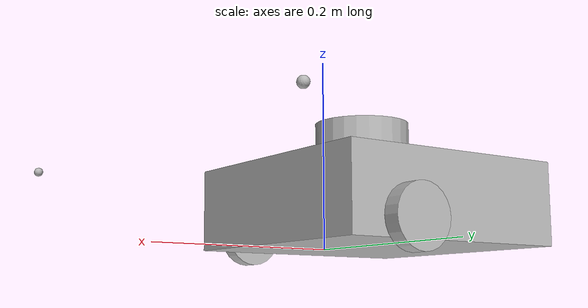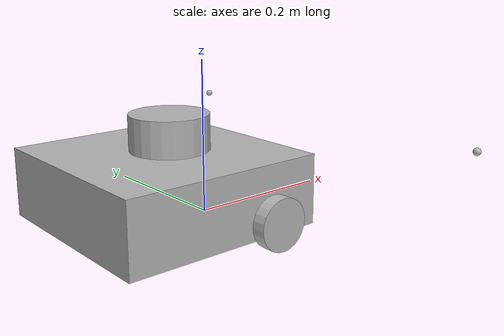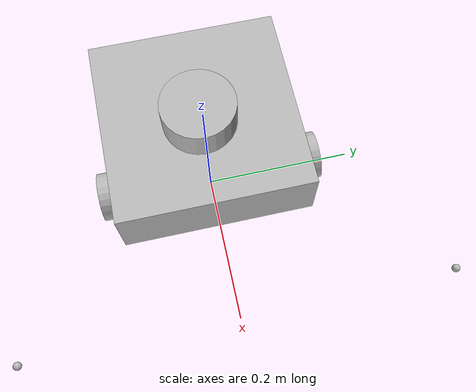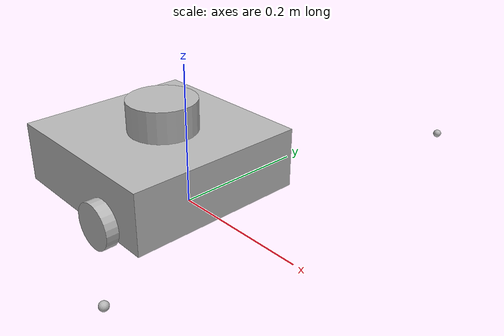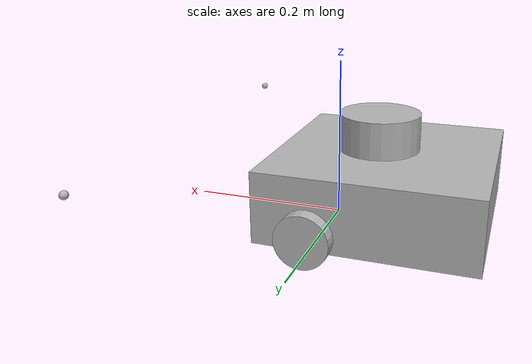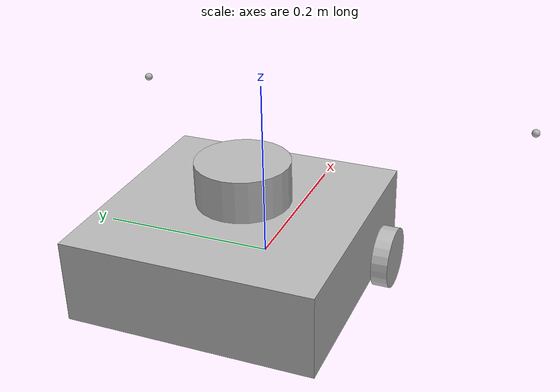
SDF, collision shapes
<?xml version="1.0" ?>
<sdf version="1.5">
  <model name="dogtooth_001">
  <pose>0.0 0.0 0.0 0.0 0.0 0.0</pose>

    <link name="base_footprint"/>

    <link name="base_link">

      <inertial>
        <pose>-0.064 0 0.048 0 0 0</pose>
        <inertia>
          <ixx>8.7002718e-03</ixx>
          <ixy>0</ixy>
          <ixz>0</ixz>
          <iyy>4.2111447e-02</iyy>
          <iyz>0</iyz>
          <izz>7.5254874e-02</izz>
        </inertia>
        <mass>300.0</mass>
      </inertial>

      <collision name="base_collision">
        <pose>-0.064 0 0.048 0 0 0</pose>
        <geometry>
          <box>
            <size>0.265 0.265 0.089</size>
          </box>
        </geometry>
      </collision>

      <visual name="base_visual">
        <pose>-0.064 0 0 0 0 0</pose>
        <geometry>
          <mesh>
            <uri>model://dogtooth_common/meshes/chassis.dae</uri>
            <scale>1 1 1</scale>
          </mesh>
        </geometry>
      </visual>
    </link>

    <link name="imu_link">
      <sensor name="tb3_imu" type="imu">
        <always_on>true</always_on>
        <update_rate>200</update_rate>
        <imu>
          <angular_velocity>
            <x>
              <noise type="gaussian">
                <mean>0.0</mean>
                <stddev>2e-4</stddev>
              </noise>
            </x>
            <y>
              <noise type="gaussian">
                <mean>0.0</mean>
                <stddev>2e-4</stddev>
              </noise>
            </y>
            <z>
              <noise type="gaussian">
                <mean>0.0</mean>
                <stddev>2e-4</stddev>
              </noise>
            </z>
          </angular_velocity>
          <linear_acceleration>
            <x>
              <noise type="gaussian">
                <mean>0.0</mean>
                <stddev>1.7e-2</stddev>
              </noise>
            </x>
            <y>
              <noise type="gaussian">
                <mean>0.0</mean>
                <stddev>1.7e-2</stddev>
              </noise>
            </y>
            <z>
              <noise type="gaussian">
                <mean>0.0</mean>
                <stddev>1.7e-2</stddev>
              </noise>
            </z>
          </linear_acceleration>
        </imu>
        <plugin name="dogtooth_imu" filename="libgazebo_ros_imu_sensor.so">
          <ros>
            <remapping>~/out:=imu</remapping>
          </ros>
        </plugin>
      </sensor>
    </link>

    <link name="base_scan">
      <inertial>
        <pose>1.2 0 0.5 0 0 -1.5</pose>

        <inertia>
          <ixx>0.001</ixx>
          <ixy>0.000</ixy>
          <ixz>0.000</ixz>
          <iyy>0.001</iyy>
          <iyz>0.000</iyz>
          <izz>0.001</izz>
        </inertia>
        <mass>0.0001</mass>
      </inertial>

      <collision name="lidar_sensor_collision">
        <pose>-0.052 0 0.111 0 0 0</pose>
        <geometry>
          <cylinder>
            <radius>0.0508</radius>
            <length>0.055</length>
          </cylinder>
        </geometry>
      </collision>

      <visual name="lidar_sensor_visual">
        <pose>1.2 0 0.5 0 0 -1.5</pose>
        <geometry>
          <mesh>
            <uri>model://dogtooth_common/meshes/lds.dae</uri>
            <scale>0.001 0.001 0.001</scale>
          </mesh>
        </geometry>
      </visual>

      <sensor name="hls_lfcd_lds" type="ray">
        <always_on>true</always_on>
        <visualize>true</visualize>
        <pose>1.2 0 0.5 0 0 -1.5</pose>
        <update_rate>5</update_rate>
        <ray>
            <scan>
              <horizontal>
                  <samples>360</samples>
                  <resolution>1.000000</resolution>
                  <min_angle>0.000000</min_angle>
                  <max_angle>3.140000</max_angle>
              </horizontal>
            </scan>
            <range>
            <min>0.80000</min>
            <max>3.5</max>
            <resolution>0.015000</resolution>
            </range>
            <noise>
            <type>gaussian</type>
            <mean>0.0</mean>
            <stddev>0.01</stddev>
            </noise>
        </ray>
        <plugin name="dogtooth_laserscan" filename="libgazebo_ros_ray_sensor.so">
          <ros>
            <remapping>~/out:=scan</remapping>
          </ros>
          <output_type>sensor_msgs/LaserScan</output_type>
          <frame_name>base_scan</frame_name>
        </plugin>
      </sensor>
    </link>

    <link name="wheel_left_link">

      <inertial>
        <pose>0.0 0.144 0.023 -1.57 0 0</pose>
        <inertia>
          <ixx>1.1175580e-05</ixx>
          <ixy>-4.2369783e-11</ixy>
          <ixz>-5.9381719e-09</ixz>
          <iyy>1.1192413e-05</iyy>
          <iyz>-1.4400107e-11</iyz>
          <izz>2.0712558e-05</izz>
        </inertia>
        <mass>0.1</mass>
      </inertial>

      <collision name="wheel_left_collision">
        <pose>0.0 0.144 0.023 -1.57 0 0</pose>
        <geometry>
          <cylinder>
            <radius>0.033</radius>
            <length>0.018</length>
          </cylinder>
        </geometry>
        <surface>
          <!-- This friction pamareter don't contain reliable data!! -->
          <friction>
            <ode>
              <mu>100000.0</mu>
              <mu2>100000.0</mu2>
              <fdir1>0 0 0</fdir1>
              <slip1>0.0</slip1>
              <slip2>0.0</slip2>
            </ode>
          </friction>
          <contact>
            <ode>
              <soft_cfm>0</soft_cfm>
              <soft_erp>0.2</soft_erp>
              <kp>1e+5</kp>
              <kd>1</kd>
              <max_vel>0.01</max_vel>
              <min_depth>0.001</min_depth>
            </ode>
          </contact>
        </surface>
      </collision>

      <visual name="wheel_left_visual">
        <pose>0.0 0.144 0.023 0 0 0</pose>
        <geometry>
          <mesh>
            <uri>model://dogtooth_common/meshes/wheel.dae</uri>
            <scale>0.001 0.001 0.001</scale>
          </mesh>
        </geometry>
      </visual>
    </link>

    <link name="wheel_right_link">

      <inertial>
        <pose>0.0 -0.144 0.023 -1.57 0 0</pose>
        <inertia>
          <ixx>1.1175580e-05</ixx>
          <ixy>-4.2369783e-11</ixy>
          <ixz>-5.9381719e-09</ixz>
          <iyy>1.1192413e-05</iyy>
          <iyz>-1.4400107e-11</iyz>
          <izz>2.0712558e-05</izz>
        </inertia>
        <mass>0.1</mass>
      </inertial>

      <collision name="wheel_right_collision">
        <pose>0.0 -0.144 0.023 -1.57 0 0</pose>
        <geometry>
          <cylinder>
            <radius>0.033</radius>
            <length>0.018</length>
          </cylinder>
        </geometry>
        <surface>
          <!-- This friction pamareter don't contain reliable data!! -->
          <friction>
            <ode>
              <mu>100000.0</mu>
              <mu2>100000.0</mu2>
              <fdir1>0 0 0</fdir1>
              <slip1>0.0</slip1>
              <slip2>0.0</slip2>
            </ode>
          </friction>
          <contact>
            <ode>
              <soft_cfm>0</soft_cfm>
              <soft_erp>0.2</soft_erp>
              <kp>1e+5</kp>
              <kd>1</kd>
              <max_vel>0.01</max_vel>
              <min_depth>0.001</min_depth>
            </ode>
          </contact>
        </surface>
      </collision>

      <visual name="wheel_right_visual">
        <pose>0.0 -0.144 0.023 0 0 0</pose>
        <geometry>
          <mesh>
            <uri>model://dogtooth_common/meshes/wheel.dae</uri>
            <scale>0.001 0.001 0.001</scale>
          </mesh>
        </geometry>
      </visual>
    </link>

    <link name='caster_back_right_link'>
      <pose>0.215 -0.263 0.096 -1.57 0 0</pose>
      <inertial>
        <mass>0.001</mass>
        <inertia>
          <ixx>0.00001</ixx>
          <ixy>0.000</ixy>
          <ixz>0.000</ixz>
          <iyy>0.00001</iyy>
          <iyz>0.000</iyz>
          <izz>0.00001</izz>
        </inertia>
      </inertial>
      <collision name='collision'>
        <geometry>
          <sphere>
            <radius>0.005000</radius>
          </sphere>
        </geometry>
        <surface>
          <contact>
            <ode>
              <soft_cfm>0</soft_cfm>
              <soft_erp>0.2</soft_erp>
              <kp>1e+5</kp>
              <kd>1</kd>
              <max_vel>0.01</max_vel>
              <min_depth>0.001</min_depth>
            </ode>
          </contact>
        </surface>
      </collision>
    </link>

    <link name='caster_back_left_link'>
      <pose>0.215 0.263 0.096 -1.57 0 0</pose>
      <inertial>
        <mass>0.001</mass>
        <inertia>
          <ixx>0.00001</ixx>
          <ixy>0.000</ixy>
          <ixz>0.000</ixz>
          <iyy>0.00001</iyy>
          <iyz>0.000</iyz>
          <izz>0.00001</izz>
        </inertia>
      </inertial>
      <collision name='collision'>
        <geometry>
          <sphere>
            <radius>0.005000</radius>
          </sphere>
        </geometry>
        <surface>
          <contact>
            <ode>
              <soft_cfm>0</soft_cfm>
              <soft_erp>0.2</soft_erp>
              <kp>1e+5</kp>
              <kd>1</kd>
              <max_vel>0.01</max_vel>
              <min_depth>0.001</min_depth>
            </ode>
          </contact>
        </surface>
      </collision>
    </link>

    <link name="gps_link">
      <sensor name="dogtooth_gps" type="gps">
          <always_on>true</always_on>
          <update_rate>1</update_rate>
          <pose>0 0 0 0 0 0</pose>
          <gps>
            <position_sensing>
              <horizontal>
                <noise type="gaussian">
                  <mean>0.0</mean>
                  <stddev>0.01</stddev>
                </noise>
              </horizontal>
              <vertical>
                <noise type="gaussian">
                  <mean>0.0</mean>
                  <stddev>0.01</stddev>
                </noise>
              </vertical>
            </position_sensing>
          </gps>
          <plugin name="dogtooth_gps_plugin" filename="libgazebo_ros_gps_sensor.so">
            <ros>
              <remapping>~/out:=/gps/fix</remapping>
            </ros>
          </plugin>
        </sensor>
    </link>

    <joint name="gps_joint" type="fixed">
      <parent>base_link</parent>
      <child>gps_link</child>
      <pose>-0.032 0 0.1 0 0 0</pose>
      <axis>
        <xyz>0 0 1</xyz>
      </axis>
    </joint>

    <joint name="base_joint" type="fixed">
      <parent>base_footprint</parent>
      <child>base_link</child>
      <pose>0.0 0.0 0.010 0 0 0</pose>
    </joint>

    <joint name="wheel_left_joint" type="revolute">
      <parent>base_link</parent>
      <child>wheel_left_link</child>
      <pose>-0.325 0.263 0.096 -1.57 0 0</pose>
      <axis>
        <xyz>0 0 1</xyz>
      </axis>
    </joint>

    <joint name="wheel_right_joint" type="revolute">
      <parent>base_link</parent>
      <child>wheel_right_link</child>
      <pose>-0.325 -0.263 0.096 -1.57 0 0</pose>
      <axis>
        <xyz>0 0 1</xyz>
      </axis>
    </joint>

    <joint name='caster_back_right_joint' type='ball'>
      <parent>base_link</parent>
      <child>caster_back_right_link</child>
    </joint>

    <joint name='caster_back_left_joint' type='ball'>
      <parent>base_link</parent>
      <child>caster_back_left_link</child>
    </joint>

    <joint name="imu_joint" type="fixed">
      <parent>base_link</parent>
      <child>imu_link</child>
      <pose>-0.032 0 0.068 0 0 0</pose>
      <axis>
        <xyz>0 0 1</xyz>
      </axis>
    </joint>

    <joint name="lidar_joint" type="fixed">
      <parent>base_link</parent>
      <child>base_scan</child>
      <pose>-0.064 0 0.121 0 0 0</pose>
      <axis>
        <xyz>0 0 1</xyz>
      </axis>
    </joint>

    <link name="ultrasonic_1_link">
        <pose>0.0 0 0.3 0 0 0</pose>
        <inertial>
          <pose>0.0 0 0.3 0 0 0</pose>
          <inertia>
            <ixx>0.001</ixx>
            <ixy>0.000</ixy>
            <ixz>0.000</ixz>
            <iyy>0.001</iyy>
            <iyz>0.000</iyz>
            <izz>0.001</izz>
          </inertia>
          <mass>0.00001</mass>
        </inertial>
        <sensor name="ultrasonic_1" type="ray">
            <always_on>true</always_on>
            <visualize>true</visualize>
            <update_rate>5</update_rate>
            <ray>
            <scan>
                <horizontal>
                <samples>5</samples>
                <resolution>1.000000</resolution>
                <min_angle>-0.12</min_angle>
                <max_angle>0.12</max_angle>
                </horizontal>
                <vertical>
                <samples>5</samples>
                <resolution>1.000000</resolution>
                <min_angle>-0.01</min_angle>
                <max_angle>0.01</max_angle>
                </vertical>
            </scan>
            <range>
                <min>0.02</min>
                <max>3</max>
                <resolution>0.01</resolution>
            </range>
            <noise>
                <type>gaussian</type>
                <mean>0.0</mean>
                <stddev>0.01</stddev>
            </noise>
            </ray>
            <plugin name="ultrasonic_sensor_1" filename="libgazebo_ros_ray_sensor.so">
            <ros>
                <remapping>~/out:=ultrasonic_sensor_1</remapping>
            </ros>
            <output_type>sensor_msgs/Range</output_type>
            <radiation_type>ultrasound</radiation_type>
            <frame_name>ultrasonic_1_link</frame_name>
            </plugin>
        </sensor>
    </link>

    <joint name="ultrasonic_1_joint" type="fixed">
      <parent>base_link</parent>
      <child>ultrasonic_1_link</child>
      <pose>0.0 0 0.3 0 0 0</pose>
      <axis>
        <xyz>0 0 1</xyz>
      </axis>
    </joint>

    <link name="ultrasonic_2_link">
        <pose>0.0 0 0.3 0 0 3.14</pose>
         <inertial>
          <pose>0.0 0 0.3 0 0 3.14</pose>
          <inertia>
            <ixx>0.001</ixx>
            <ixy>0.000</ixy>
            <ixz>0.000</ixz>
            <iyy>0.001</iyy>
            <iyz>0.000</iyz>
            <izz>0.001</izz>
          </inertia>
          <mass>0.00001</mass>
        </inertial>
        <sensor name="ultrasonic_2" type="ray">
            <always_on>true</always_on>
            <visualize>true</visualize>
            <update_rate>5</update_rate>
            <ray>
            <scan>
                <horizontal>
                <samples>5</samples>
                <resolution>1.000000</resolution>
                <min_angle>-0.12</min_angle>
                <max_angle>0.12</max_angle>
                </horizontal>
                <vertical>
                <samples>5</samples>
                <resolution>1.000000</resolution>
                <min_angle>-0.01</min_angle>
                <max_angle>0.01</max_angle>
                </vertical>
            </scan>
            <range>
                <min>0.02</min>
                <max>3</max>
                <resolution>0.01</resolution>
            </range>
            <noise>
                <type>gaussian</type>
                <mean>0.0</mean>
                <stddev>0.01</stddev>
            </noise>
            </ray>
            <plugin name="ultrasonic_sensor_2" filename="libgazebo_ros_ray_sensor.so">
            <ros>
                <remapping>~/out:=ultrasonic_sensor_2</remapping>
            </ros>
            <output_type>sensor_msgs/Range</output_type>
            <radiation_type>ultrasound</radiation_type>
            <frame_name>ultrasonic_2_link</frame_name>
            </plugin>
        </sensor>
    </link>

    <joint name="ultrasonic_2_joint" type="fixed">
      <parent>base_link</parent>
      <child>ultrasonic_2_link</child>
      <pose>0.0 0 0.3 0 0 3.14</pose>
      <axis>
        <xyz>0 0 1</xyz>
      </axis>
    </joint>

    <link name="front_camera_link">
      <inertial>
        <pose>1.2 0.0 0.9 0 0 0</pose>
        <inertia>
          <ixx>0.001</ixx>
          <ixy>0.000</ixy>
          <ixz>0.000</ixz>
          <iyy>0.001</iyy>
          <iyz>0.000</iyz>
          <izz>0.001</izz>
        </inertia>
        <mass>0.00001</mass>
      </inertial>

      <pose>1.2 0.0 0.9 0 0 0</pose>
      <sensor name="front_camera" type="depth">
        <always_on>1</always_on>
        <update_rate>1</update_rate>
        <camera name="front_camera">
        </camera>
	    <plugin name="front_camera_depth_driver" filename="libgazebo_ros_camera.so">
            <ros>
            </ros>
            <camera_name>front_camera</camera_name>
            <frame_name>front_camera_depth_frame</frame_name>
            <hack_baseline>0.07</hack_baseline>
            <min_depth>0.4</min_depth>
            <max_depth>8</max_depth>
        </plugin>
      </sensor>
      <sensor name="front_camera_rgb" type="camera">
        <always_on>true</always_on>
        <visualize>true</visualize>
        <update_rate>30</update_rate>
        <camera name="front_camera_rgb">
          <horizontal_fov>1.02974</horizontal_fov>
          <image>
            <width>1920</width>
            <height>1080</height>
            <format>R8G8B8</format>
          </image>
          <clip>
            <near>0.02</near>
            <far>300</far>
          </clip>
          <noise>
            <type>gaussian</type>
            <mean>0.0</mean>
            <stddev>0.007</stddev>
          </noise>
        </camera>
          <plugin name="front_camera_driver" filename="libgazebo_ros_camera.so">
            <ros>
            </ros>
            <camera_name>front_camera_rgb</camera_name>
            <frame_name>front_camera_rgb_frame</frame_name>
            <hack_baseline>0.07</hack_baseline>
          </plugin>
      </sensor>
    </link>

    <link name="front_camera_rgb_frame"/>

    <joint name="front_camera_joint" type="fixed">
      <parent>base_link</parent>
      <child>front_camera_link</child>
      <pose>1.2 0.0 0.9 0 0 0</pose>
      <axis>
        <xyz>0 0 1</xyz>
      </axis>
    </joint>

    <joint name="front_camera_rgb_joint" type="fixed">
      <parent>front_camera_link</parent>
      <child>front_camera_rgb_frame</child>
      <pose>0.005 0.018 0.013 -1.57 0 -1.57</pose>
      <axis>
        <xyz>0 0 1</xyz>
      </axis>
    </joint>

    <joint name="front_camera_rgb_optical_joint" type="fixed">
      <parent>front_camera_rgb_frame</parent>
      <child>front_camera_rgb_optical_frame</child>
      <pose>0 0 0 -1.57 0 -1.57</pose>
      <axis>
        <xyz>0 0 1</xyz>
      </axis>
    </joint>

    <link name="front_camera_rgb_optical_frame"/>

    <joint name="front_camera_depth_joint" type="fixed">
      <parent>front_camera_link</parent>
      <child>front_camera_depth_frame</child>
      <pose>0.005 0.028 0.013 -1.57 0 -1.57</pose>
      <axis>
        <xyz>0 0 1</xyz>
      </axis>
    </joint>

    <link name="front_camera_depth_frame">
      <inertial>
        <pose>0.005 0.028 0.013 0 0 0</pose>
        <inertia>
          <ixx>0.001</ixx>
          <ixy>0.000</ixy>
          <ixz>0.000</ixz>
          <iyy>0.001</iyy>
          <iyz>0.000</iyz>
          <izz>0.001</izz>
        </inertia>
        <mass>0.0001</mass>
      </inertial>
    </link>

    <joint name="front_camera_depth_optical_joint" type="fixed">
      <parent>front_camera_depth_frame</parent>
      <child>front_camera_depth_optical_frame</child>
      <pose>0 0 0 -1.57 0 -1.57</pose>
      <axis>
        <xyz>0 0 1</xyz>
      </axis>
    </joint>

    <link name="front_camera_depth_optical_frame">
      <inertial>
        <pose>0 0 0 -1.57 0 -1.57</pose>
        <inertia>
          <ixx>0.001</ixx>
          <ixy>0.000</ixy>
          <ixz>0.000</ixz>
          <iyy>0.001</iyy>
          <iyz>0.000</iyz>
          <izz>0.001</izz>
        </inertia>
        <mass>0.00001</mass>
      </inertial>
    </link>

    <link name="back_camera_link">
      <inertial>
        <pose>-1.2 0.0 0.9 0 0 3.14</pose>
        <inertia>
          <ixx>0.001</ixx>
          <ixy>0.000</ixy>
          <ixz>0.000</ixz>
          <iyy>0.001</iyy>
          <iyz>0.000</iyz>
          <izz>0.001</izz>
        </inertia>
        <mass>0.00001</mass>
      </inertial>

      <pose>-1.2 0.0 0.9 0 0 3.14</pose>
      <sensor name="back_camera" type="depth">
        <always_on>1</always_on>
        <update_rate>1</update_rate>
        <camera name="back_camera">
        </camera>
	    <plugin name="back_camera_depth_driver" filename="libgazebo_ros_camera.so">
            <ros>
            </ros>
            <camera_name>back_camera</camera_name>
            <frame_name>back_camera_depth_frame</frame_name>
            <hack_baseline>0.07</hack_baseline>
            <min_depth>0.4</min_depth>
            <max_depth>8</max_depth>
        </plugin>
      </sensor>
      <sensor name="back_camera_rgb" type="camera">
        <always_on>true</always_on>
        <visualize>true</visualize>
        <update_rate>30</update_rate>
        <camera name="back_camera_rgb">
          <horizontal_fov>1.02974</horizontal_fov>
          <image>
            <width>1920</width>
            <height>1080</height>
            <format>R8G8B8</format>
          </image>
          <clip>
            <near>0.02</near>
            <far>300</far>
          </clip>
          <noise>
            <type>gaussian</type>
            <mean>0.0</mean>
            <stddev>0.007</stddev>
          </noise>
        </camera>
          <plugin name="back_camera_driver" filename="libgazebo_ros_camera.so">
            <ros>
            </ros>
            <camera_name>back_camera_rgb</camera_name>
            <frame_name>back_camera_rgb_frame</frame_name>
            <hack_baseline>0.07</hack_baseline>
          </plugin>
      </sensor>
    </link>

    <link name="back_camera_rgb_frame"/>

    <joint name="back_camera_joint" type="fixed">
      <parent>base_link</parent>
      <child>back_camera_link</child>
      <pose>-1.2 0.0 0.9 0 0 3.14</pose>
      <axis>
        <xyz>0 0 1</xyz>
      </axis>
    </joint>

    <joint name="back_camera_rgb_joint" type="fixed">
      <parent>back_camera_link</parent>
      <child>back_camera_rgb_frame</child>
      <pose>0.005 0.018 0.013 -1.57 0 -1.57</pose>
      <axis>
        <xyz>0 0 1</xyz>
      </axis>
    </joint>

    <joint name="back_camera_rgb_optical_joint" type="fixed">
      <parent>back_camera_rgb_frame</parent>
      <child>back_camera_rgb_optical_frame</child>
      <pose>0 0 0 -1.57 0 -1.57</pose>
      <axis>
        <xyz>0 0 1</xyz>
      </axis>
    </joint>

    <link name="back_camera_rgb_optical_frame"/>

    <joint name="back_camera_depth_joint" type="fixed">
      <parent>back_camera_link</parent>
      <child>back_camera_depth_frame</child>
      <pose>0.005 0.028 0.013 -1.57 0 -1.57</pose>
      <axis>
        <xyz>0 0 1</xyz>
      </axis>
    </joint>

    <link name="back_camera_depth_frame">
      <inertial>
        <pose>0.005 0.028 0.013 0 0 0</pose>
        <inertia>
          <ixx>0.001</ixx>
          <ixy>0.000</ixy>
          <ixz>0.000</ixz>
          <iyy>0.001</iyy>
          <iyz>0.000</iyz>
          <izz>0.001</izz>
        </inertia>
        <mass>0.0001</mass>
      </inertial>
    </link>

    <joint name="back_camera_depth_optical_joint" type="fixed">
      <parent>back_camera_depth_frame</parent>
      <child>back_camera_depth_optical_frame</child>
      <pose>0 0 0 -1.57 0 -1.57</pose>
      <axis>
        <xyz>0 0 1</xyz>
      </axis>
    </joint>

    <link name="back_camera_depth_optical_frame">
      <inertial>
        <pose>0 0 0 -1.57 0 -1.57</pose>
        <inertia>
          <ixx>0.001</ixx>
          <ixy>0.000</ixy>
          <ixz>0.000</ixz>
          <iyy>0.001</iyy>
          <iyz>0.000</iyz>
          <izz>0.001</izz>
        </inertia>
        <mass>0.00001</mass>
      </inertial>
    </link>

    <plugin name="dogtooth_diff_drive" filename="libgazebo_ros_diff_drive.so">

      <ros>
      </ros>

      <update_rate>30</update_rate>

      <!-- wheels -->
      <left_joint>wheel_left_joint</left_joint>
      <right_joint>wheel_right_joint</right_joint>

      <!-- kinematics -->
      <wheel_separation>0.52</wheel_separation>
      <wheel_diameter>0.14</wheel_diameter>

      <!-- limits -->
      <max_wheel_torque>100</max_wheel_torque>
      <max_wheel_acceleration>20.0</max_wheel_acceleration>

      <command_topic>cmd_vel</command_topic>

      <!-- output -->
      <publish_odom>true</publish_odom>
      <publish_odom_tf>false</publish_odom_tf>
      <publish_wheel_tf>false</publish_wheel_tf>

      <odometry_topic>odom</odometry_topic>
      <odometry_frame>odom</odometry_frame>
      <robot_base_frame>base_footprint</robot_base_frame>

    </plugin>

    <plugin name="dogtooth_joint_state" filename="libgazebo_ros_joint_state_publisher.so">
      <ros>
        <remapping>~/out:=joint_states</remapping>
      </ros>
      <update_rate>30</update_rate>
      <joint_name>wheel_left_joint</joint_name>
      <joint_name>wheel_right_joint</joint_name>
    </plugin>

  </model>
</sdf>
